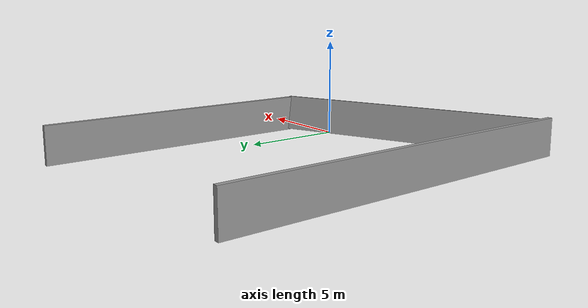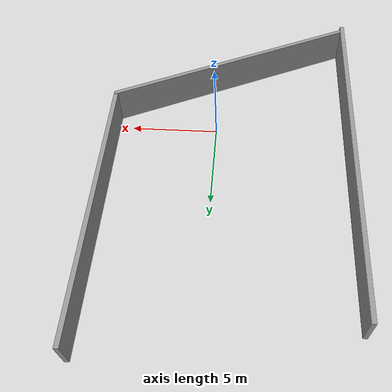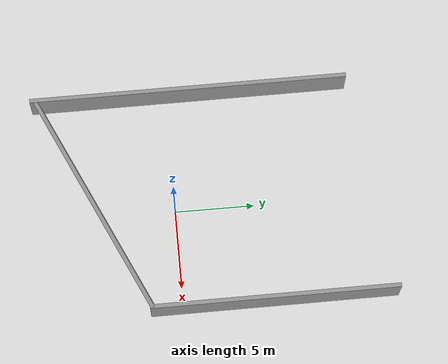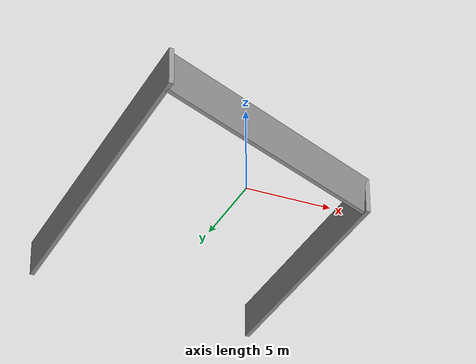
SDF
<?xml version='1.0'?>
<sdf version='1.7'>
  <model name='wall'>
    <link name='link'>
      <inertial>
        <mass>11.2249</mass>
        <inertia>
          <ixx>393.925</ixx>
          <ixy>0</ixy>
          <ixz>0</ixz>
          <iyy>4.16723</iyy>
          <iyz>0</iyz>
          <izz>389.887</izz>
        </inertia>
        <pose>0 0 0 0 -0 0</pose>
      </inertial>
      <self_collide>0</self_collide>
      <enable_wind>0</enable_wind>
      <kinematic>0</kinematic>
      <pose>-7.97991 1.50789 0 0 -0 0</pose>
      <visual name='visual'>
        <geometry>
          <box>
            <size>0.261934 20.4142 2.09437</size>
          </box>
        </geometry>
        <material>
          <script>
            <name>Gazebo/Grey</name>
            <uri>file://media/materials/scripts/gazebo.material</uri>
          </script>
          <shader type='pixel'/>
        </material>
        <pose>0 0 0 0 -0 0</pose>
        <transparency>0</transparency>
        <cast_shadows>1</cast_shadows>
      </visual>
      <collision name='collision'>
        <laser_retro>0</laser_retro>
        <max_contacts>10</max_contacts>
        <pose>0 0 0 0 -0 0</pose>
        <geometry>
          <box>
            <size>0.261934 20.4142 2.09437</size>
          </box>
        </geometry>
        <surface>
          <friction>
            <ode>
              <mu>1</mu>
              <mu2>1</mu2>
              <fdir1>0 0 0</fdir1>
              <slip1>0</slip1>
              <slip2>0</slip2>
            </ode>
            <torsional>
              <coefficient>1</coefficient>
              <patch_radius>0</patch_radius>
              <surface_radius>0</surface_radius>
              <use_patch_radius>1</use_patch_radius>
              <ode>
                <slip>0</slip>
              </ode>
            </torsional>
          </friction>
          <bounce>
            <restitution_coefficient>0</restitution_coefficient>
            <threshold>1e+06</threshold>
          </bounce>
          <contact>
            <collide_without_contact>0</collide_without_contact>
            <collide_without_contact_bitmask>1</collide_without_contact_bitmask>
            <collide_bitmask>1</collide_bitmask>
            <ode>
              <soft_cfm>0</soft_cfm>
              <soft_erp>0.2</soft_erp>
              <kp>1e+13</kp>
              <kd>1</kd>
              <max_vel>0.01</max_vel>
              <min_depth>0</min_depth>
            </ode>
            <bullet>
              <split_impulse>1</split_impulse>
              <split_impulse_penetration_threshold>-0.01</split_impulse_penetration_threshold>
              <soft_cfm>0</soft_cfm>
              <soft_erp>0.2</soft_erp>
              <kp>1e+13</kp>
              <kd>1</kd>
            </bullet>
          </contact>
        </surface>
      </collision>
    </link>
    <link name='link_clone'>
      <inertial>
        <mass>8.56147</mass>
        <inertia>
          <ixx>176.244</ixx>
          <ixy>0</ixy>
          <ixz>0</ixz>
          <iyy>3.17843</iyy>
          <iyz>0</iyz>
          <izz>173.163</izz>
        </inertia>
        <pose>0 0 0 0 -0 0</pose>
      </inertial>
      <self_collide>0</self_collide>
      <enable_wind>0</enable_wind>
      <kinematic>0</kinematic>
      <pose>6.24134 5.74184 0 0 -0 0</pose>
      <visual name='visual'>
        <geometry>
          <box>
            <size>0.261934 15.577 2.09437</size>
          </box>
        </geometry>
        <material>
          <script>
            <name>Gazebo/Grey</name>
            <uri>file://media/materials/scripts/gazebo.material</uri>
          </script>
          <shader type='pixel'/>
        </material>
        <pose>0 0 0 0 -0 0</pose>
        <transparency>0</transparency>
        <cast_shadows>1</cast_shadows>
      </visual>
      <collision name='collision'>
        <laser_retro>0</laser_retro>
        <max_contacts>10</max_contacts>
        <pose>0 0 0 0 -0 0</pose>
        <geometry>
          <box>
            <size>0.261934 15.577 2.09437</size>
          </box>
        </geometry>
        <surface>
          <friction>
            <ode>
              <mu>1</mu>
              <mu2>1</mu2>
              <fdir1>0 0 0</fdir1>
              <slip1>0</slip1>
              <slip2>0</slip2>
            </ode>
            <torsional>
              <coefficient>1</coefficient>
              <patch_radius>0</patch_radius>
              <surface_radius>0</surface_radius>
              <use_patch_radius>1</use_patch_radius>
              <ode>
                <slip>0</slip>
              </ode>
            </torsional>
          </friction>
          <bounce>
            <restitution_coefficient>0</restitution_coefficient>
            <threshold>1e+06</threshold>
          </bounce>
          <contact>
            <collide_without_contact>0</collide_without_contact>
            <collide_without_contact_bitmask>1</collide_without_contact_bitmask>
            <collide_bitmask>1</collide_bitmask>
            <ode>
              <soft_cfm>0</soft_cfm>
              <soft_erp>0.2</soft_erp>
              <kp>1e+13</kp>
              <kd>1</kd>
              <max_vel>0.01</max_vel>
              <min_depth>0</min_depth>
            </ode>
            <bullet>
              <split_impulse>1</split_impulse>
              <split_impulse_penetration_threshold>-0.01</split_impulse_penetration_threshold>
              <soft_cfm>0</soft_cfm>
              <soft_erp>0.2</soft_erp>
              <kp>1e+13</kp>
              <kd>1</kd>
            </bullet>
          </contact>
        </surface>
      </collision>
    </link>
    <link name='link_clone_0'>
      <inertial>
        <mass>8.56147</mass>
        <inertia>
          <ixx>176.244</ixx>
          <ixy>0</ixy>
          <ixz>0</ixz>
          <iyy>3.17843</iyy>
          <iyz>0</iyz>
          <izz>173.163</izz>
        </inertia>
        <pose>0 0 0 0 -0 0</pose>
      </inertial>
      <self_collide>0</self_collide>
      <enable_wind>0</enable_wind>
      <kinematic>0</kinematic>
      <pose>-0.819195 -4.99611 -0.003703 -0.005803 -0.115463 1.99858</pose>
      <visual name='visual'>
        <geometry>
          <box>
            <size>0.261934 15.577 2.09437</size>
          </box>
        </geometry>
        <material>
          <script>
            <name>Gazebo/Grey</name>
            <uri>file://media/materials/scripts/gazebo.material</uri>
          </script>
          <shader type='pixel'/>
        </material>
        <pose>0 0 0 0 -0 0</pose>
        <transparency>0</transparency>
        <cast_shadows>1</cast_shadows>
      </visual>
      <collision name='collision'>
        <laser_retro>0</laser_retro>
        <max_contacts>10</max_contacts>
        <pose>0 0 0 0 -0 0</pose>
        <geometry>
          <box>
            <size>0.261934 15.577 2.09437</size>
          </box>
        </geometry>
        <surface>
          <friction>
            <ode>
              <mu>1</mu>
              <mu2>1</mu2>
              <fdir1>0 0 0</fdir1>
              <slip1>0</slip1>
              <slip2>0</slip2>
            </ode>
            <torsional>
              <coefficient>1</coefficient>
              <patch_radius>0</patch_radius>
              <surface_radius>0</surface_radius>
              <use_patch_radius>1</use_patch_radius>
              <ode>
                <slip>0</slip>
              </ode>
            </torsional>
          </friction>
          <bounce>
            <restitution_coefficient>0</restitution_coefficient>
            <threshold>1e+06</threshold>
          </bounce>
          <contact>
            <collide_without_contact>0</collide_without_contact>
            <collide_without_contact_bitmask>1</collide_without_contact_bitmask>
            <collide_bitmask>1</collide_bitmask>
            <ode>
              <soft_cfm>0</soft_cfm>
              <soft_erp>0.2</soft_erp>
              <kp>1e+13</kp>
              <kd>1</kd>
              <max_vel>0.01</max_vel>
              <min_depth>0</min_depth>
            </ode>
            <bullet>
              <split_impulse>1</split_impulse>
              <split_impulse_penetration_threshold>-0.01</split_impulse_penetration_threshold>
              <soft_cfm>0</soft_cfm>
              <soft_erp>0.2</soft_erp>
              <kp>1e+13</kp>
              <kd>1</kd>
            </bullet>
          </contact>
        </surface>
      </collision>
    </link>
    <static>1</static>
    <allow_auto_disable>1</allow_auto_disable>
  </model>
</sdf>
